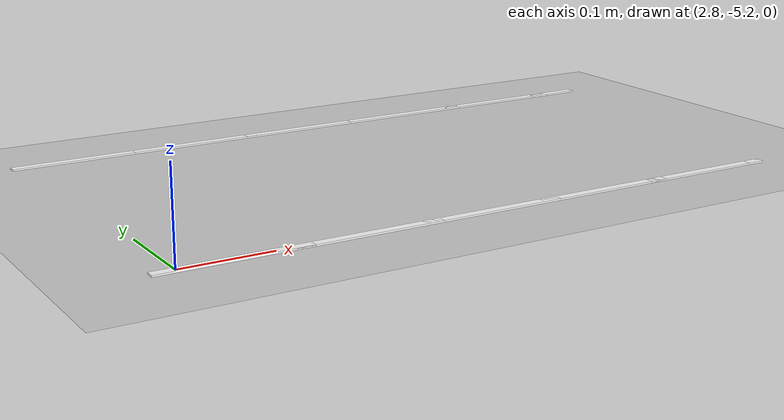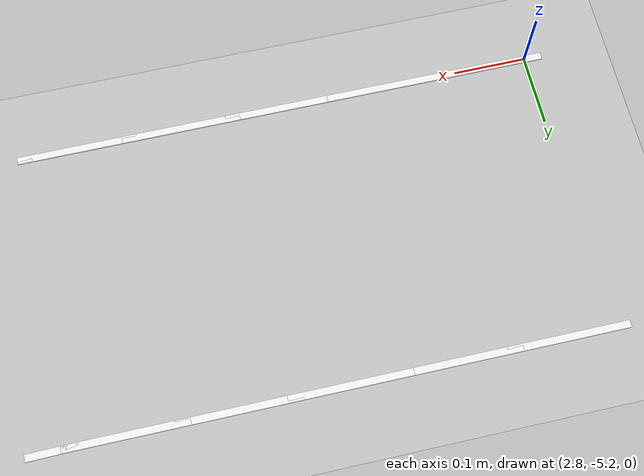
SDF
<sdf version="1.7">
 <world name="default">
  <model name="ground_plane">
   <static>1</static>
   <link name="link">
    <collision name="collision">
     <geometry><plane><normal>0 0 1</normal><size>100 100</size></plane></geometry>
     <surface>
      <contact><collide_bitmask>65535</collide_bitmask></contact>
      <friction><ode><mu>100</mu><mu2>50</mu2></ode></friction>
     </surface>
    </collision>
    <visual name="visual">
     <cast_shadows>0</cast_shadows>
     <geometry><plane><normal>0 0 1</normal><size>100 100</size></plane></geometry>
     <material>
      <script><uri>file://media/materials/scripts/gazebo.material</uri><name>Gazebo/Grey</name></script>
     </material>
    </visual>
   </link>
  </model>
  <model name="lane_line_left_44">
   <static>1</static>
   <link name="link">
    <pose>0 0 -0.004 0 -0 0</pose>
    <visual name="visual">
     <geometry><box><size>0.1629 0.01 0.01</size></box></geometry>
     <material><ambient>1 1 1 1</ambient><diffuse>1 1 1 1</diffuse></material>
    </visual>
    <collision name="collision"><geometry><box><size>0.1629 0.01 0.01</size></box></geometry></collision>
   </link>
   <pose>2.85714 -4.8 0 0 -0 0</pose>
  </model>
  <model name="lane_line_right_44">
   <static>1</static>
   <link name="link">
    <pose>0 0 -0.004 0 -0 0</pose>
    <visual name="visual">
     <geometry><box><size>0.1629 0.01 0.01</size></box></geometry>
     <material><ambient>1 1 1 1</ambient><diffuse>1 1 1 1</diffuse></material>
    </visual>
    <collision name="collision"><geometry><box><size>0.1629 0.01 0.01</size></box></geometry></collision>
   </link>
   <pose>2.85714 -5.2 0 0 -0 0</pose>
  </model>
  <model name="lane_line_left_45">
   <static>1</static>
   <link name="link">
    <pose>0 0 -0.004 0 -0 0</pose>
    <visual name="visual">
     <geometry><box><size>0.1629 0.01 0.01</size></box></geometry>
     <material><ambient>1 1 1 1</ambient><diffuse>1 1 1 1</diffuse></material>
    </visual>
    <collision name="collision"><geometry><box><size>0.1629 0.01 0.01</size></box></geometry></collision>
   </link>
   <pose>3 -4.8 0 0 -0 0</pose>
  </model>
  <model name="lane_line_right_45">
   <static>1</static>
   <link name="link">
    <pose>0 0 -0.004 0 -0 0</pose>
    <visual name="visual">
     <geometry><box><size>0.1629 0.01 0.01</size></box></geometry>
     <material><ambient>1 1 1 1</ambient><diffuse>1 1 1 1</diffuse></material>
    </visual>
    <collision name="collision"><geometry><box><size>0.1629 0.01 0.01</size></box></geometry></collision>
   </link>
   <pose>3 -5.2 0 0 -0 0</pose>
  </model>
  <model name="lane_line_left_46">
   <static>1</static>
   <link name="link">
    <pose>0 0 -0.004 0 -0 0</pose>
    <visual name="visual">
     <geometry><box><size>0.1629 0.01 0.01</size></box></geometry>
     <material><ambient>1 1 1 1</ambient><diffuse>1 1 1 1</diffuse></material>
    </visual>
    <collision name="collision"><geometry><box><size>0.1629 0.01 0.01</size></box></geometry></collision>
   </link>
   <pose>3.14286 -4.8 0 0 -0 0</pose>
  </model>
  <model name="lane_line_right_46">
   <static>1</static>
   <link name="link">
    <pose>0 0 -0.004 0 -0 0</pose>
    <visual name="visual">
     <geometry><box><size>0.1629 0.01 0.01</size></box></geometry>
     <material><ambient>1 1 1 1</ambient><diffuse>1 1 1 1</diffuse></material>
    </visual>
    <collision name="collision"><geometry><box><size>0.1629 0.01 0.01</size></box></geometry></collision>
   </link>
   <pose>3.14286 -5.2 0 0 -0 0</pose>
  </model>
  <model name="lane_line_left_47">
   <static>1</static>
   <link name="link">
    <pose>0 0 -0.004 0 -0 0</pose>
    <visual name="visual">
     <geometry><box><size>0.1629 0.01 0.01</size></box></geometry>
     <material><ambient>1 1 1 1</ambient><diffuse>1 1 1 1</diffuse></material>
    </visual>
    <collision name="collision"><geometry><box><size>0.1629 0.01 0.01</size></box></geometry></collision>
   </link>
   <pose>3.28571 -4.8 0 0 -0 0</pose>
  </model>
  <model name="lane_line_right_47">
   <static>1</static>
   <link name="link">
    <pose>0 0 -0.004 0 -0 0</pose>
    <visual name="visual">
     <geometry><box><size>0.1629 0.01 0.01</size></box></geometry>
     <material><ambient>1 1 1 1</ambient><diffuse>1 1 1 1</diffuse></material>
    </visual>
    <collision name="collision"><geometry><box><size>0.1629 0.01 0.01</size></box></geometry></collision>
   </link>
   <pose>3.28571 -5.2 0 0 -0 0</pose>
  </model>
  <model name="lane_line_left_48">
   <static>1</static>
   <link name="link">
    <pose>0 0 -0.004 0 -0 0</pose>
    <visual name="visual">
     <geometry><box><size>0.1629 0.01 0.01</size></box></geometry>
     <material><ambient>1 1 1 1</ambient><diffuse>1 1 1 1</diffuse></material>
    </visual>
    <collision name="collision"><geometry><box><size>0.1629 0.01 0.01</size></box></geometry></collision>
   </link>
   <pose>3.42857 -4.8 0 0 -0 0</pose>
  </model>
  <model name="lane_line_right_48">
   <static>1</static>
   <link name="link">
    <pose>0 0 -0.004 0 -0 0</pose>
    <visual name="visual">
     <geometry><box><size>0.1629 0.01 0.01</size></box></geometry>
     <material><ambient>1 1 1 1</ambient><diffuse>1 1 1 1</diffuse></material>
    </visual>
    <collision name="collision"><geometry><box><size>0.1629 0.01 0.01</size></box></geometry></collision>
   </link>
   <pose>3.42857 -5.2 0 0 -0 0</pose>
  </model>
  <model name="lane_line_left_49">
   <static>1</static>
   <link name="link">
    <pose>0 0 -0.004 0 -0 0</pose>
    <visual name="visual">
     <geometry><box><size>0.02 0.01 0.01</size></box></geometry>
     <material><ambient>1 1 1 1</ambient><diffuse>1 1 1 1</diffuse></material>
    </visual>
    <collision name="collision"><geometry><box><size>0.02 0.01 0.01</size></box></geometry></collision>
   </link>
   <pose>3.5 -4.8 0 0 -0 0</pose>
  </model>
  <model name="lane_line_right_49">
   <static>1</static>
   <link name="link">
    <pose>0 0 -0.004 0 -0 0</pose>
    <visual name="visual">
     <geometry><box><size>0.02 0.01 0.01</size></box></geometry>
     <material><ambient>1 1 1 1</ambient><diffuse>1 1 1 1</diffuse></material>
    </visual>
    <collision name="collision"><geometry><box><size>0.02 0.01 0.01</size></box></geometry></collision>
   </link>
   <pose>3.5 -5.2 0 0 -0 0</pose>
  </model>
  <model name="lane_line_left_50">
   <static>1</static>
   <link name="link">
    <pose>0 0 -0.004 0 -0 0</pose>
    <visual name="visual">
     <geometry><box><size>0.0681 0.01 0.01</size></box></geometry>
     <material><ambient>1 1 1 1</ambient><diffuse>1 1 1 1</diffuse></material>
    </visual>
    <collision name="collision"><geometry><box><size>0.0681 0.01 0.01</size></box></geometry></collision>
   </link>
   <pose>3.52083 -4.79964 0 0 -0 0.016029</pose>
  </model>
 </world>
</sdf>
